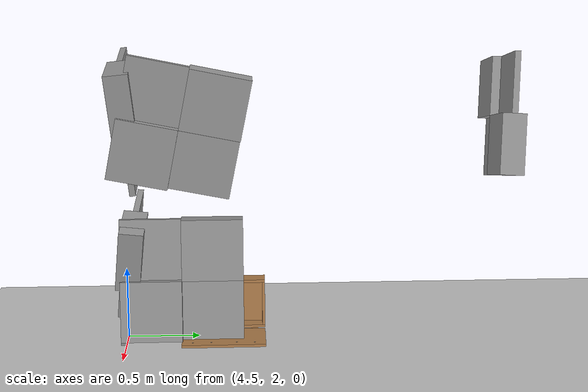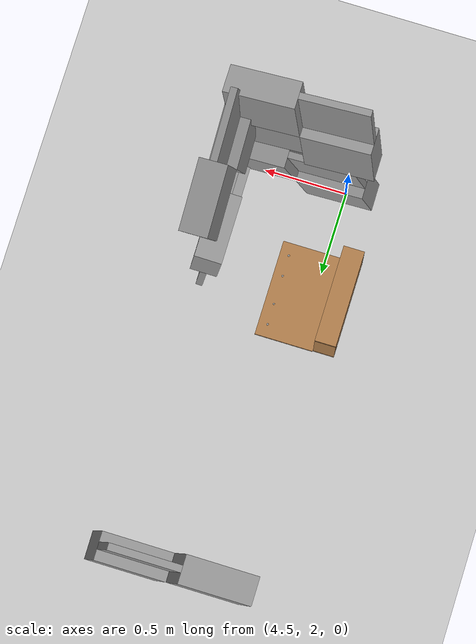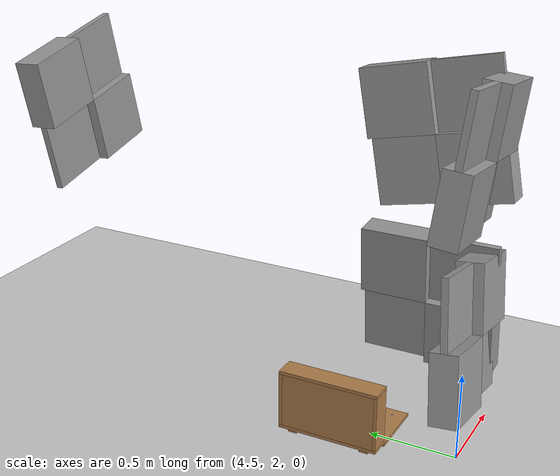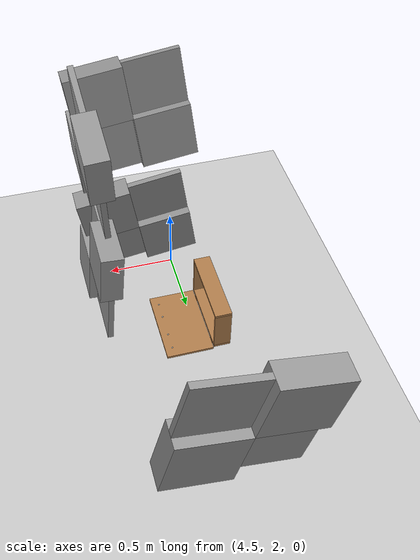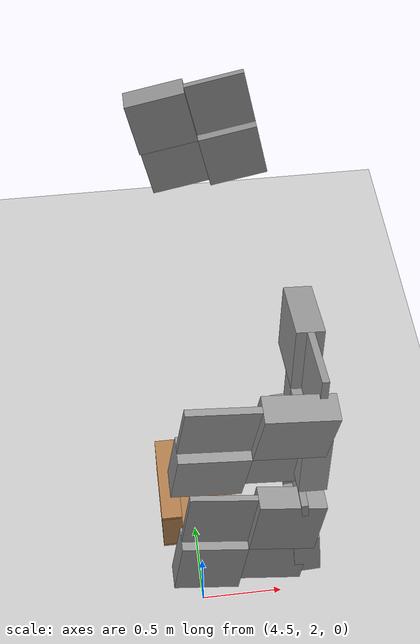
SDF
<sdf version="1.7">
 <world name="default">
  <model name="ground_plane">
   <static>1</static>
   <link name="link">
    <collision name="collision">
     <geometry><plane><normal>0 0 1</normal><size>100 100</size></plane></geometry>
     <surface>
      <contact><collide_bitmask>65535</collide_bitmask></contact>
      <friction><ode><mu>100</mu><mu2>50</mu2></ode></friction>
     </surface>
    </collision>
    <visual name="visual">
     <cast_shadows>0</cast_shadows>
     <geometry><plane><normal>0 0 1</normal><size>100 100</size></plane></geometry>
     <material>
      <script><uri>file://media/materials/scripts/gazebo.material</uri><name>Gazebo/Grey</name></script>
     </material>
    </visual>
   </link>
  </model>
  <model name="wall_slate_8">
   <static>1</static>
   <link name="link_0">
    <inertial><mass>1</mass></inertial>
    <gravity>0</gravity>
    <visual name="visual">
     <pose>0 0.2 0.2 0 -0 0</pose>
     <geometry><box><size>0.16 0.4 0.4</size></box></geometry>
     <material>
      <lighting>1</lighting>
      <script><uri>file://media/materials/scripts/gazebo.material</uri><name>Gazebo/Grey</name></script>
      <shader type="pixel"><normal_map>__default__</normal_map></shader>
      <ambient>0.3 0.3 0.3 1</ambient>
      <diffuse>0.7 0.7 0.7 1</diffuse>
      <specular>0.01 0.01 0.01 1</specular>
      <emissive>0 0 0 1</emissive>
     </material>
    </visual>
    <visual name="ModelPreview_0::link_0::visual_1">
     <pose>0 0.2 -0.2 0 -0 0</pose>
     <geometry><box><size>0.04 0.4 0.4</size></box></geometry>
     <material>
      <lighting>1</lighting>
      <script><uri>file://media/materials/scripts/gazebo.material</uri><name>Gazebo/Grey</name></script>
      <shader type="pixel"><normal_map>__default__</normal_map></shader>
      <ambient>0.3 0.3 0.3 1</ambient>
      <diffuse>0.7 0.7 0.7 1</diffuse>
      <specular>0.01 0.01 0.01 1</specular>
      <emissive>0 0 0 1</emissive>
     </material>
    </visual>
    <visual name="ModelPreview_0::link_0::visual_2">
     <pose>0 -0.2 0.2 0 -0 0</pose>
     <geometry><box><size>0.04 0.4 0.4</size></box></geometry>
     <material>
      <lighting>1</lighting>
      <script><uri>file://media/materials/scripts/gazebo.material</uri><name>Gazebo/Grey</name></script>
      <shader type="pixel"><normal_map>__default__</normal_map></shader>
      <ambient>0.3 0.3 0.3 1</ambient>
      <diffuse>0.7 0.7 0.7 1</diffuse>
      <specular>0.01 0.01 0.01 1</specular>
      <emissive>0 0 0 1</emissive>
     </material>
    </visual>
    <visual name="ModelPreview_0::link_0::visual_3">
     <pose>0 -0.2 -0.2 0 -0 0</pose>
     <geometry><box><size>0.16 0.4 0.4</size></box></geometry>
     <material>
      <lighting>1</lighting>
      <script><uri>file://media/materials/scripts/gazebo.material</uri><name>Gazebo/Grey</name></script>
      <shader type="pixel"><normal_map>__default__</normal_map></shader>
      <ambient>0.3 0.3 0.3 1</ambient>
      <diffuse>0.7 0.7 0.7 1</diffuse>
      <specular>0.01 0.01 0.01 1</specular>
      <emissive>0 0 0 1</emissive>
     </material>
    </visual>
    <collision name="collision_2">
     <pose>0 -0.2 0.2 0 -0 0</pose>
     <geometry><box><size>0.04 0.4 0.4</size></box></geometry>
     <surface>
      <friction>
       <ode><mu>1</mu><mu2>1</mu2><fdir1>0 0 0</fdir1><slip1>0</slip1><slip2>0</slip2></ode>
       <torsional>
        <coefficient>1</coefficient>
        <patch_radius>0</patch_radius>
        <surface_radius>0</surface_radius>
        <use_patch_radius>1</use_patch_radius>
        <ode><slip>0</slip></ode>
       </torsional>
      </friction>
      <bounce><restitution_coefficient>0</restitution_coefficient><threshold>1e+06</threshold></bounce>
      <contact>
       <collide_without_contact>0</collide_without_contact>
       <collide_without_contact_bitmask>1</collide_without_contact_bitmask>
       <collide_bitmask>1</collide_bitmask>
       <ode>
        <soft_cfm>0</soft_cfm>
        <soft_erp>0.2</soft_erp>
        <kp>1e+13</kp>
        <kd>1</kd>
        <max_vel>0.01</max_vel>
        <min_depth>0</min_depth>
       </ode>
       <bullet>
        <split_impulse>1</split_impulse>
        <split_impulse_penetration_threshold>-0.01</split_impulse_penetration_threshold>
        <soft_cfm>0</soft_cfm>
        <soft_erp>0.2</soft_erp>
        <kp>1e+13</kp>
        <kd>1</kd>
       </bullet>
      </contact>
     </surface>
    </collision>
    <collision name="collision_1">
     <pose>0 0.2 -0.2 0 -0 0</pose>
     <geometry><box><size>0.04 0.4 0.4</size></box></geometry>
     <surface>
      <friction>
       <ode><mu>1</mu><mu2>1</mu2><fdir1>0 0 0</fdir1><slip1>0</slip1><slip2>0</slip2></ode>
       <torsional>
        <coefficient>1</coefficient>
        <patch_radius>0</patch_radius>
        <surface_radius>0</surface_radius>
        <use_patch_radius>1</use_patch_radius>
        <ode><slip>0</slip></ode>
       </torsional>
      </friction>
      <bounce><restitution_coefficient>0</restitution_coefficient><threshold>1e+06</threshold></bounce>
      <contact>
       <collide_without_contact>0</collide_without_contact>
       <collide_without_contact_bitmask>1</collide_without_contact_bitmask>
       <collide_bitmask>1</collide_bitmask>
       <ode>
        <soft_cfm>0</soft_cfm>
        <soft_erp>0.2</soft_erp>
        <kp>1e+13</kp>
        <kd>1</kd>
        <max_vel>0.01</max_vel>
        <min_depth>0</min_depth>
       </ode>
       <bullet>
        <split_impulse>1</split_impulse>
        <split_impulse_penetration_threshold>-0.01</split_impulse_penetration_threshold>
        <soft_cfm>0</soft_cfm>
        <soft_erp>0.2</soft_erp>
        <kp>1e+13</kp>
        <kd>1</kd>
       </bullet>
      </contact>
     </surface>
    </collision>
    <collision name="collision_4">
     <pose>0 0.2 0.2 0 -0 0</pose>
     <geometry><box><size>0.16 0.4 0.4</size></box></geometry>
     <surface>
      <friction>
       <ode><mu>1</mu><mu2>1</mu2><fdir1>0 0 0</fdir1><slip1>0</slip1><slip2>0</slip2></ode>
       <torsional>
        <coefficient>1</coefficient>
        <patch_radius>0</patch_radius>
        <surface_radius>0</surface_radius>
        <use_patch_radius>1</use_patch_radius>
        <ode><slip>0</slip></ode>
       </torsional>
      </friction>
      <bounce><restitution_coefficient>0</restitution_coefficient><threshold>1e+06</threshold></bounce>
      <contact>
       <collide_without_contact>0</collide_without_contact>
       <collide_without_contact_bitmask>1</collide_without_contact_bitmask>
       <collide_bitmask>1</collide_bitmask>
       <ode>
        <soft_cfm>0</soft_cfm>
        <soft_erp>0.2</soft_erp>
        <kp>1e+13</kp>
        <kd>1</kd>
        <max_vel>0.01</max_vel>
        <min_depth>0</min_depth>
       </ode>
       <bullet>
        <split_impulse>1</split_impulse>
        <split_impulse_penetration_threshold>-0.01</split_impulse_penetration_threshold>
        <soft_cfm>0</soft_cfm>
        <soft_erp>0.2</soft_erp>
        <kp>1e+13</kp>
        <kd>1</kd>
       </bullet>
      </contact>
     </surface>
    </collision>
    <collision name="collision_3">
     <pose>0 -0.2 -0.2 0 -0 0</pose>
     <geometry><box><size>0.16 0.4 0.4</size></box></geometry>
     <surface>
      <friction>
       <ode><mu>1</mu><mu2>1</mu2><fdir1>0 0 0</fdir1><slip1>0</slip1><slip2>0</slip2></ode>
       <torsional>
        <coefficient>1</coefficient>
        <patch_radius>0</patch_radius>
        <surface_radius>0</surface_radius>
        <use_patch_radius>1</use_patch_radius>
        <ode><slip>0</slip></ode>
       </torsional>
      </friction>
      <bounce><restitution_coefficient>0</restitution_coefficient><threshold>1e+06</threshold></bounce>
      <contact>
       <collide_without_contact>0</collide_without_contact>
       <collide_without_contact_bitmask>1</collide_without_contact_bitmask>
       <collide_bitmask>1</collide_bitmask>
       <ode>
        <soft_cfm>0</soft_cfm>
        <soft_erp>0.2</soft_erp>
        <kp>1e+13</kp>
        <kd>1</kd>
        <max_vel>0.01</max_vel>
        <min_depth>0</min_depth>
       </ode>
       <bullet>
        <split_impulse>1</split_impulse>
        <split_impulse_penetration_threshold>-0.01</split_impulse_penetration_threshold>
        <soft_cfm>0</soft_cfm>
        <soft_erp>0.2</soft_erp>
        <kp>1e+13</kp>
        <kd>1</kd>
       </bullet>
      </contact>
     </surface>
    </collision>
   </link>
   <pose>4.77851 2.06618 0.6 -0.16 -0.1 -1.5659</pose>
  </model>
  <model name="wall_slate_38">
   <static>1</static>
   <link name="link_0">
    <inertial><mass>1</mass></inertial>
    <gravity>0</gravity>
    <visual name="visual">
     <pose>0 0.2 0.2 0 -0 0</pose>
     <geometry><box><size>0.16 0.4 0.4</size></box></geometry>
     <material>
      <lighting>1</lighting>
      <script><uri>file://media/materials/scripts/gazebo.material</uri><name>Gazebo/Grey</name></script>
      <shader type="pixel"><normal_map>__default__</normal_map></shader>
      <ambient>0.3 0.3 0.3 1</ambient>
      <diffuse>0.7 0.7 0.7 1</diffuse>
      <specular>0.01 0.01 0.01 1</specular>
      <emissive>0 0 0 1</emissive>
     </material>
    </visual>
    <visual name="ModelPreview_0::link_0::visual_1">
     <pose>0 0.2 -0.2 0 -0 0</pose>
     <geometry><box><size>0.04 0.4 0.4</size></box></geometry>
     <material>
      <lighting>1</lighting>
      <script><uri>file://media/materials/scripts/gazebo.material</uri><name>Gazebo/Grey</name></script>
      <shader type="pixel"><normal_map>__default__</normal_map></shader>
      <ambient>0.3 0.3 0.3 1</ambient>
      <diffuse>0.7 0.7 0.7 1</diffuse>
      <specular>0.01 0.01 0.01 1</specular>
      <emissive>0 0 0 1</emissive>
     </material>
    </visual>
    <visual name="ModelPreview_0::link_0::visual_2">
     <pose>0 -0.2 0.2 0 -0 0</pose>
     <geometry><box><size>0.04 0.4 0.4</size></box></geometry>
     <material>
      <lighting>1</lighting>
      <script><uri>file://media/materials/scripts/gazebo.material</uri><name>Gazebo/Grey</name></script>
      <shader type="pixel"><normal_map>__default__</normal_map></shader>
      <ambient>0.3 0.3 0.3 1</ambient>
      <diffuse>0.7 0.7 0.7 1</diffuse>
      <specular>0.01 0.01 0.01 1</specular>
      <emissive>0 0 0 1</emissive>
     </material>
    </visual>
    <visual name="ModelPreview_0::link_0::visual_3">
     <pose>0 -0.2 -0.2 0 -0 0</pose>
     <geometry><box><size>0.16 0.4 0.4</size></box></geometry>
     <material>
      <lighting>1</lighting>
      <script><uri>file://media/materials/scripts/gazebo.material</uri><name>Gazebo/Grey</name></script>
      <shader type="pixel"><normal_map>__default__</normal_map></shader>
      <ambient>0.3 0.3 0.3 1</ambient>
      <diffuse>0.7 0.7 0.7 1</diffuse>
      <specular>0.01 0.01 0.01 1</specular>
      <emissive>0 0 0 1</emissive>
     </material>
    </visual>
    <collision name="collision_2">
     <pose>0 -0.2 0.2 0 -0 0</pose>
     <geometry><box><size>0.04 0.4 0.4</size></box></geometry>
     <surface>
      <friction>
       <ode><mu>1</mu><mu2>1</mu2><fdir1>0 0 0</fdir1><slip1>0</slip1><slip2>0</slip2></ode>
       <torsional>
        <coefficient>1</coefficient>
        <patch_radius>0</patch_radius>
        <surface_radius>0</surface_radius>
        <use_patch_radius>1</use_patch_radius>
        <ode><slip>0</slip></ode>
       </torsional>
      </friction>
      <bounce><restitution_coefficient>0</restitution_coefficient><threshold>1e+06</threshold></bounce>
      <contact>
       <collide_without_contact>0</collide_without_contact>
       <collide_without_contact_bitmask>1</collide_without_contact_bitmask>
       <collide_bitmask>1</collide_bitmask>
       <ode>
        <soft_cfm>0</soft_cfm>
        <soft_erp>0.2</soft_erp>
        <kp>1e+13</kp>
        <kd>1</kd>
        <max_vel>0.01</max_vel>
        <min_depth>0</min_depth>
       </ode>
       <bullet>
        <split_impulse>1</split_impulse>
        <split_impulse_penetration_threshold>-0.01</split_impulse_penetration_threshold>
        <soft_cfm>0</soft_cfm>
        <soft_erp>0.2</soft_erp>
        <kp>1e+13</kp>
        <kd>1</kd>
       </bullet>
      </contact>
     </surface>
    </collision>
    <collision name="collision_1">
     <pose>0 0.2 -0.2 0 -0 0</pose>
     <geometry><box><size>0.04 0.4 0.4</size></box></geometry>
     <surface>
      <friction>
       <ode><mu>1</mu><mu2>1</mu2><fdir1>0 0 0</fdir1><slip1>0</slip1><slip2>0</slip2></ode>
       <torsional>
        <coefficient>1</coefficient>
        <patch_radius>0</patch_radius>
        <surface_radius>0</surface_radius>
        <use_patch_radius>1</use_patch_radius>
        <ode><slip>0</slip></ode>
       </torsional>
      </friction>
      <bounce><restitution_coefficient>0</restitution_coefficient><threshold>1e+06</threshold></bounce>
      <contact>
       <collide_without_contact>0</collide_without_contact>
       <collide_without_contact_bitmask>1</collide_without_contact_bitmask>
       <collide_bitmask>1</collide_bitmask>
       <ode>
        <soft_cfm>0</soft_cfm>
        <soft_erp>0.2</soft_erp>
        <kp>1e+13</kp>
        <kd>1</kd>
        <max_vel>0.01</max_vel>
        <min_depth>0</min_depth>
       </ode>
       <bullet>
        <split_impulse>1</split_impulse>
        <split_impulse_penetration_threshold>-0.01</split_impulse_penetration_threshold>
        <soft_cfm>0</soft_cfm>
        <soft_erp>0.2</soft_erp>
        <kp>1e+13</kp>
        <kd>1</kd>
       </bullet>
      </contact>
     </surface>
    </collision>
    <collision name="collision_4">
     <pose>0 0.2 0.2 0 -0 0</pose>
     <geometry><box><size>0.16 0.4 0.4</size></box></geometry>
     <surface>
      <friction>
       <ode><mu>1</mu><mu2>1</mu2><fdir1>0 0 0</fdir1><slip1>0</slip1><slip2>0</slip2></ode>
       <torsional>
        <coefficient>1</coefficient>
        <patch_radius>0</patch_radius>
        <surface_radius>0</surface_radius>
        <use_patch_radius>1</use_patch_radius>
        <ode><slip>0</slip></ode>
       </torsional>
      </friction>
      <bounce><restitution_coefficient>0</restitution_coefficient><threshold>1e+06</threshold></bounce>
      <contact>
       <collide_without_contact>0</collide_without_contact>
       <collide_without_contact_bitmask>1</collide_without_contact_bitmask>
       <collide_bitmask>1</collide_bitmask>
       <ode>
        <soft_cfm>0</soft_cfm>
        <soft_erp>0.2</soft_erp>
        <kp>1e+13</kp>
        <kd>1</kd>
        <max_vel>0.01</max_vel>
        <min_depth>0</min_depth>
       </ode>
       <bullet>
        <split_impulse>1</split_impulse>
        <split_impulse_penetration_threshold>-0.01</split_impulse_penetration_threshold>
        <soft_cfm>0</soft_cfm>
        <soft_erp>0.2</soft_erp>
        <kp>1e+13</kp>
        <kd>1</kd>
       </bullet>
      </contact>
     </surface>
    </collision>
    <collision name="collision_3">
     <pose>0 -0.2 -0.2 0 -0 0</pose>
     <geometry><box><size>0.16 0.4 0.4</size></box></geometry>
     <surface>
      <friction>
       <ode><mu>1</mu><mu2>1</mu2><fdir1>0 0 0</fdir1><slip1>0</slip1><slip2>0</slip2></ode>
       <torsional>
        <coefficient>1</coefficient>
        <patch_radius>0</patch_radius>
        <surface_radius>0</surface_radius>
        <use_patch_radius>1</use_patch_radius>
        <ode><slip>0</slip></ode>
       </torsional>
      </friction>
      <bounce><restitution_coefficient>0</restitution_coefficient><threshold>1e+06</threshold></bounce>
      <contact>
       <collide_without_contact>0</collide_without_contact>
       <collide_without_contact_bitmask>1</collide_without_contact_bitmask>
       <collide_bitmask>1</collide_bitmask>
       <ode>
        <soft_cfm>0</soft_cfm>
        <soft_erp>0.2</soft_erp>
        <kp>1e+13</kp>
        <kd>1</kd>
        <max_vel>0.01</max_vel>
        <min_depth>0</min_depth>
       </ode>
       <bullet>
        <split_impulse>1</split_impulse>
        <split_impulse_penetration_threshold>-0.01</split_impulse_penetration_threshold>
        <soft_cfm>0</soft_cfm>
        <soft_erp>0.2</soft_erp>
        <kp>1e+13</kp>
        <kd>1</kd>
       </bullet>
      </contact>
     </surface>
    </collision>
   </link>
   <pose>4.75351 4.56618 1.6 -0.2 0.06 1.5757</pose>
  </model>
  <model name="wall_slate_48">
   <static>1</static>
   <link name="link_0">
    <inertial><mass>1</mass></inertial>
    <gravity>0</gravity>
    <visual name="visual">
     <pose>0 0.2 0.2 0 -0 0</pose>
     <geometry><box><size>0.16 0.4 0.4</size></box></geometry>
     <material>
      <lighting>1</lighting>
      <script><uri>file://media/materials/scripts/gazebo.material</uri><name>Gazebo/Grey</name></script>
      <shader type="pixel"><normal_map>__default__</normal_map></shader>
      <ambient>0.3 0.3 0.3 1</ambient>
      <diffuse>0.7 0.7 0.7 1</diffuse>
      <specular>0.01 0.01 0.01 1</specular>
      <emissive>0 0 0 1</emissive>
     </material>
    </visual>
    <visual name="ModelPreview_0::link_0::visual_1">
     <pose>0 0.2 -0.2 0 -0 0</pose>
     <geometry><box><size>0.04 0.4 0.4</size></box></geometry>
     <material>
      <lighting>1</lighting>
      <script><uri>file://media/materials/scripts/gazebo.material</uri><name>Gazebo/Grey</name></script>
      <shader type="pixel"><normal_map>__default__</normal_map></shader>
      <ambient>0.3 0.3 0.3 1</ambient>
      <diffuse>0.7 0.7 0.7 1</diffuse>
      <specular>0.01 0.01 0.01 1</specular>
      <emissive>0 0 0 1</emissive>
     </material>
    </visual>
    <visual name="ModelPreview_0::link_0::visual_2">
     <pose>0 -0.2 0.2 0 -0 0</pose>
     <geometry><box><size>0.04 0.4 0.4</size></box></geometry>
     <material>
      <lighting>1</lighting>
      <script><uri>file://media/materials/scripts/gazebo.material</uri><name>Gazebo/Grey</name></script>
      <shader type="pixel"><normal_map>__default__</normal_map></shader>
      <ambient>0.3 0.3 0.3 1</ambient>
      <diffuse>0.7 0.7 0.7 1</diffuse>
      <specular>0.01 0.01 0.01 1</specular>
      <emissive>0 0 0 1</emissive>
     </material>
    </visual>
    <visual name="ModelPreview_0::link_0::visual_3">
     <pose>0 -0.2 -0.2 0 -0 0</pose>
     <geometry><box><size>0.16 0.4 0.4</size></box></geometry>
     <material>
      <lighting>1</lighting>
      <script><uri>file://media/materials/scripts/gazebo.material</uri><name>Gazebo/Grey</name></script>
      <shader type="pixel"><normal_map>__default__</normal_map></shader>
      <ambient>0.3 0.3 0.3 1</ambient>
      <diffuse>0.7 0.7 0.7 1</diffuse>
      <specular>0.01 0.01 0.01 1</specular>
      <emissive>0 0 0 1</emissive>
     </material>
    </visual>
    <collision name="collision_2">
     <pose>0 -0.2 0.2 0 -0 0</pose>
     <geometry><box><size>0.04 0.4 0.4</size></box></geometry>
     <surface>
      <friction>
       <ode><mu>1</mu><mu2>1</mu2><fdir1>0 0 0</fdir1><slip1>0</slip1><slip2>0</slip2></ode>
       <torsional>
        <coefficient>1</coefficient>
        <patch_radius>0</patch_radius>
        <surface_radius>0</surface_radius>
        <use_patch_radius>1</use_patch_radius>
        <ode><slip>0</slip></ode>
       </torsional>
      </friction>
      <bounce><restitution_coefficient>0</restitution_coefficient><threshold>1e+06</threshold></bounce>
      <contact>
       <collide_without_contact>0</collide_without_contact>
       <collide_without_contact_bitmask>1</collide_without_contact_bitmask>
       <collide_bitmask>1</collide_bitmask>
       <ode>
        <soft_cfm>0</soft_cfm>
        <soft_erp>0.2</soft_erp>
        <kp>1e+13</kp>
        <kd>1</kd>
        <max_vel>0.01</max_vel>
        <min_depth>0</min_depth>
       </ode>
       <bullet>
        <split_impulse>1</split_impulse>
        <split_impulse_penetration_threshold>-0.01</split_impulse_penetration_threshold>
        <soft_cfm>0</soft_cfm>
        <soft_erp>0.2</soft_erp>
        <kp>1e+13</kp>
        <kd>1</kd>
       </bullet>
      </contact>
     </surface>
    </collision>
    <collision name="collision_1">
     <pose>0 0.2 -0.2 0 -0 0</pose>
     <geometry><box><size>0.04 0.4 0.4</size></box></geometry>
     <surface>
      <friction>
       <ode><mu>1</mu><mu2>1</mu2><fdir1>0 0 0</fdir1><slip1>0</slip1><slip2>0</slip2></ode>
       <torsional>
        <coefficient>1</coefficient>
        <patch_radius>0</patch_radius>
        <surface_radius>0</surface_radius>
        <use_patch_radius>1</use_patch_radius>
        <ode><slip>0</slip></ode>
       </torsional>
      </friction>
      <bounce><restitution_coefficient>0</restitution_coefficient><threshold>1e+06</threshold></bounce>
      <contact>
       <collide_without_contact>0</collide_without_contact>
       <collide_without_contact_bitmask>1</collide_without_contact_bitmask>
       <collide_bitmask>1</collide_bitmask>
       <ode>
        <soft_cfm>0</soft_cfm>
        <soft_erp>0.2</soft_erp>
        <kp>1e+13</kp>
        <kd>1</kd>
        <max_vel>0.01</max_vel>
        <min_depth>0</min_depth>
       </ode>
       <bullet>
        <split_impulse>1</split_impulse>
        <split_impulse_penetration_threshold>-0.01</split_impulse_penetration_threshold>
        <soft_cfm>0</soft_cfm>
        <soft_erp>0.2</soft_erp>
        <kp>1e+13</kp>
        <kd>1</kd>
       </bullet>
      </contact>
     </surface>
    </collision>
    <collision name="collision_4">
     <pose>0 0.2 0.2 0 -0 0</pose>
     <geometry><box><size>0.16 0.4 0.4</size></box></geometry>
     <surface>
      <friction>
       <ode><mu>1</mu><mu2>1</mu2><fdir1>0 0 0</fdir1><slip1>0</slip1><slip2>0</slip2></ode>
       <torsional>
        <coefficient>1</coefficient>
        <patch_radius>0</patch_radius>
        <surface_radius>0</surface_radius>
        <use_patch_radius>1</use_patch_radius>
        <ode><slip>0</slip></ode>
       </torsional>
      </friction>
      <bounce><restitution_coefficient>0</restitution_coefficient><threshold>1e+06</threshold></bounce>
      <contact>
       <collide_without_contact>0</collide_without_contact>
       <collide_without_contact_bitmask>1</collide_without_contact_bitmask>
       <collide_bitmask>1</collide_bitmask>
       <ode>
        <soft_cfm>0</soft_cfm>
        <soft_erp>0.2</soft_erp>
        <kp>1e+13</kp>
        <kd>1</kd>
        <max_vel>0.01</max_vel>
        <min_depth>0</min_depth>
       </ode>
       <bullet>
        <split_impulse>1</split_impulse>
        <split_impulse_penetration_threshold>-0.01</split_impulse_penetration_threshold>
        <soft_cfm>0</soft_cfm>
        <soft_erp>0.2</soft_erp>
        <kp>1e+13</kp>
        <kd>1</kd>
       </bullet>
      </contact>
     </surface>
    </collision>
    <collision name="collision_3">
     <pose>0 -0.2 -0.2 0 -0 0</pose>
     <geometry><box><size>0.16 0.4 0.4</size></box></geometry>
     <surface>
      <friction>
       <ode><mu>1</mu><mu2>1</mu2><fdir1>0 0 0</fdir1><slip1>0</slip1><slip2>0</slip2></ode>
       <torsional>
        <coefficient>1</coefficient>
        <patch_radius>0</patch_radius>
        <surface_radius>0</surface_radius>
        <use_patch_radius>1</use_patch_radius>
        <ode><slip>0</slip></ode>
       </torsional>
      </friction>
      <bounce><restitution_coefficient>0</restitution_coefficient><threshold>1e+06</threshold></bounce>
      <contact>
       <collide_without_contact>0</collide_without_contact>
       <collide_without_contact_bitmask>1</collide_without_contact_bitmask>
       <collide_bitmask>1</collide_bitmask>
       <ode>
        <soft_cfm>0</soft_cfm>
        <soft_erp>0.2</soft_erp>
        <kp>1e+13</kp>
        <kd>1</kd>
        <max_vel>0.01</max_vel>
        <min_depth>0</min_depth>
       </ode>
       <bullet>
        <split_impulse>1</split_impulse>
        <split_impulse_penetration_threshold>-0.01</split_impulse_penetration_threshold>
        <soft_cfm>0</soft_cfm>
        <soft_erp>0.2</soft_erp>
        <kp>1e+13</kp>
        <kd>1</kd>
       </bullet>
      </contact>
     </surface>
    </collision>
   </link>
   <pose>5.12851 2.41618 1.6 -0.2 0.06 0.0049</pose>
  </model>
  <model name="wall_slate_87">
   <static>1</static>
   <link name="link_0">
    <inertial><mass>1</mass></inertial>
    <gravity>0</gravity>
    <visual name="visual">
     <pose>0 0.2 0.2 0 -0 0</pose>
     <geometry><box><size>0.16 0.4 0.4</size></box></geometry>
     <material>
      <lighting>1</lighting>
      <script><uri>file://media/materials/scripts/gazebo.material</uri><name>Gazebo/Grey</name></script>
      <shader type="pixel"><normal_map>__default__</normal_map></shader>
      <ambient>0.3 0.3 0.3 1</ambient>
      <diffuse>0.7 0.7 0.7 1</diffuse>
      <specular>0.01 0.01 0.01 1</specular>
      <emissive>0 0 0 1</emissive>
     </material>
    </visual>
    <visual name="ModelPreview_0::link_0::visual_1">
     <pose>0 0.2 -0.2 0 -0 0</pose>
     <geometry><box><size>0.04 0.4 0.4</size></box></geometry>
     <material>
      <lighting>1</lighting>
      <script><uri>file://media/materials/scripts/gazebo.material</uri><name>Gazebo/Grey</name></script>
      <shader type="pixel"><normal_map>__default__</normal_map></shader>
      <ambient>0.3 0.3 0.3 1</ambient>
      <diffuse>0.7 0.7 0.7 1</diffuse>
      <specular>0.01 0.01 0.01 1</specular>
      <emissive>0 0 0 1</emissive>
     </material>
    </visual>
    <visual name="ModelPreview_0::link_0::visual_2">
     <pose>0 -0.2 0.2 0 -0 0</pose>
     <geometry><box><size>0.04 0.4 0.4</size></box></geometry>
     <material>
      <lighting>1</lighting>
      <script><uri>file://media/materials/scripts/gazebo.material</uri><name>Gazebo/Grey</name></script>
      <shader type="pixel"><normal_map>__default__</normal_map></shader>
      <ambient>0.3 0.3 0.3 1</ambient>
      <diffuse>0.7 0.7 0.7 1</diffuse>
      <specular>0.01 0.01 0.01 1</specular>
      <emissive>0 0 0 1</emissive>
     </material>
    </visual>
    <visual name="ModelPreview_0::link_0::visual_3">
     <pose>0 -0.2 -0.2 0 -0 0</pose>
     <geometry><box><size>0.16 0.4 0.4</size></box></geometry>
     <material>
      <lighting>1</lighting>
      <script><uri>file://media/materials/scripts/gazebo.material</uri><name>Gazebo/Grey</name></script>
      <shader type="pixel"><normal_map>__default__</normal_map></shader>
      <ambient>0.3 0.3 0.3 1</ambient>
      <diffuse>0.7 0.7 0.7 1</diffuse>
      <specular>0.01 0.01 0.01 1</specular>
      <emissive>0 0 0 1</emissive>
     </material>
    </visual>
    <collision name="collision_2">
     <pose>0 -0.2 0.2 0 -0 0</pose>
     <geometry><box><size>0.04 0.4 0.4</size></box></geometry>
     <surface>
      <friction>
       <ode><mu>1</mu><mu2>1</mu2><fdir1>0 0 0</fdir1><slip1>0</slip1><slip2>0</slip2></ode>
       <torsional>
        <coefficient>1</coefficient>
        <patch_radius>0</patch_radius>
        <surface_radius>0</surface_radius>
        <use_patch_radius>1</use_patch_radius>
        <ode><slip>0</slip></ode>
       </torsional>
      </friction>
      <bounce><restitution_coefficient>0</restitution_coefficient><threshold>1e+06</threshold></bounce>
      <contact>
       <collide_without_contact>0</collide_without_contact>
       <collide_without_contact_bitmask>1</collide_without_contact_bitmask>
       <collide_bitmask>1</collide_bitmask>
       <ode>
        <soft_cfm>0</soft_cfm>
        <soft_erp>0.2</soft_erp>
        <kp>1e+13</kp>
        <kd>1</kd>
        <max_vel>0.01</max_vel>
        <min_depth>0</min_depth>
       </ode>
       <bullet>
        <split_impulse>1</split_impulse>
        <split_impulse_penetration_threshold>-0.01</split_impulse_penetration_threshold>
        <soft_cfm>0</soft_cfm>
        <soft_erp>0.2</soft_erp>
        <kp>1e+13</kp>
        <kd>1</kd>
       </bullet>
      </contact>
     </surface>
    </collision>
    <collision name="collision_1">
     <pose>0 0.2 -0.2 0 -0 0</pose>
     <geometry><box><size>0.04 0.4 0.4</size></box></geometry>
     <surface>
      <friction>
       <ode><mu>1</mu><mu2>1</mu2><fdir1>0 0 0</fdir1><slip1>0</slip1><slip2>0</slip2></ode>
       <torsional>
        <coefficient>1</coefficient>
        <patch_radius>0</patch_radius>
        <surface_radius>0</surface_radius>
        <use_patch_radius>1</use_patch_radius>
        <ode><slip>0</slip></ode>
       </torsional>
      </friction>
      <bounce><restitution_coefficient>0</restitution_coefficient><threshold>1e+06</threshold></bounce>
      <contact>
       <collide_without_contact>0</collide_without_contact>
       <collide_without_contact_bitmask>1</collide_without_contact_bitmask>
       <collide_bitmask>1</collide_bitmask>
       <ode>
        <soft_cfm>0</soft_cfm>
        <soft_erp>0.2</soft_erp>
        <kp>1e+13</kp>
        <kd>1</kd>
        <max_vel>0.01</max_vel>
        <min_depth>0</min_depth>
       </ode>
       <bullet>
        <split_impulse>1</split_impulse>
        <split_impulse_penetration_threshold>-0.01</split_impulse_penetration_threshold>
        <soft_cfm>0</soft_cfm>
        <soft_erp>0.2</soft_erp>
        <kp>1e+13</kp>
        <kd>1</kd>
       </bullet>
      </contact>
     </surface>
    </collision>
    <collision name="collision_4">
     <pose>0 0.2 0.2 0 -0 0</pose>
     <geometry><box><size>0.16 0.4 0.4</size></box></geometry>
     <surface>
      <friction>
       <ode><mu>1</mu><mu2>1</mu2><fdir1>0 0 0</fdir1><slip1>0</slip1><slip2>0</slip2></ode>
       <torsional>
        <coefficient>1</coefficient>
        <patch_radius>0</patch_radius>
        <surface_radius>0</surface_radius>
        <use_patch_radius>1</use_patch_radius>
        <ode><slip>0</slip></ode>
       </torsional>
      </friction>
      <bounce><restitution_coefficient>0</restitution_coefficient><threshold>1e+06</threshold></bounce>
      <contact>
       <collide_without_contact>0</collide_without_contact>
       <collide_without_contact_bitmask>1</collide_without_contact_bitmask>
       <collide_bitmask>1</collide_bitmask>
       <ode>
        <soft_cfm>0</soft_cfm>
        <soft_erp>0.2</soft_erp>
        <kp>1e+13</kp>
        <kd>1</kd>
        <max_vel>0.01</max_vel>
        <min_depth>0</min_depth>
       </ode>
       <bullet>
        <split_impulse>1</split_impulse>
        <split_impulse_penetration_threshold>-0.01</split_impulse_penetration_threshold>
        <soft_cfm>0</soft_cfm>
        <soft_erp>0.2</soft_erp>
        <kp>1e+13</kp>
        <kd>1</kd>
       </bullet>
      </contact>
     </surface>
    </collision>
    <collision name="collision_3">
     <pose>0 -0.2 -0.2 0 -0 0</pose>
     <geometry><box><size>0.16 0.4 0.4</size></box></geometry>
     <surface>
      <friction>
       <ode><mu>1</mu><mu2>1</mu2><fdir1>0 0 0</fdir1><slip1>0</slip1><slip2>0</slip2></ode>
       <torsional>
        <coefficient>1</coefficient>
        <patch_radius>0</patch_radius>
        <surface_radius>0</surface_radius>
        <use_patch_radius>1</use_patch_radius>
        <ode><slip>0</slip></ode>
       </torsional>
      </friction>
      <bounce><restitution_coefficient>0</restitution_coefficient><threshold>1e+06</threshold></bounce>
      <contact>
       <collide_without_contact>0</collide_without_contact>
       <collide_without_contact_bitmask>1</collide_without_contact_bitmask>
       <collide_bitmask>1</collide_bitmask>
       <ode>
        <soft_cfm>0</soft_cfm>
        <soft_erp>0.2</soft_erp>
        <kp>1e+13</kp>
        <kd>1</kd>
        <max_vel>0.01</max_vel>
        <min_depth>0</min_depth>
       </ode>
       <bullet>
        <split_impulse>1</split_impulse>
        <split_impulse_penetration_threshold>-0.01</split_impulse_penetration_threshold>
        <soft_cfm>0</soft_cfm>
        <soft_erp>0.2</soft_erp>
        <kp>1e+13</kp>
        <kd>1</kd>
       </bullet>
      </contact>
     </surface>
    </collision>
   </link>
   <pose>5.12851 2.41618 0.6 -0 -0.08 0.0049</pose>
  </model>
  <model name="wall_slate_106">
   <static>1</static>
   <link name="link_0">
    <inertial><mass>1</mass></inertial>
    <gravity>0</gravity>
    <visual name="visual">
     <pose>0 0.2 0.2 0 -0 0</pose>
     <geometry><box><size>0.16 0.4 0.4</size></box></geometry>
     <material>
      <lighting>1</lighting>
      <script><uri>file://media/materials/scripts/gazebo.material</uri><name>Gazebo/Grey</name></script>
      <shader type="pixel"><normal_map>__default__</normal_map></shader>
      <ambient>0.3 0.3 0.3 1</ambient>
      <diffuse>0.7 0.7 0.7 1</diffuse>
      <specular>0.01 0.01 0.01 1</specular>
      <emissive>0 0 0 1</emissive>
     </material>
    </visual>
    <visual name="ModelPreview_0::link_0::visual_1">
     <pose>0 0.2 -0.2 0 -0 0</pose>
     <geometry><box><size>0.04 0.4 0.4</size></box></geometry>
     <material>
      <lighting>1</lighting>
      <script><uri>file://media/materials/scripts/gazebo.material</uri><name>Gazebo/Grey</name></script>
      <shader type="pixel"><normal_map>__default__</normal_map></shader>
      <ambient>0.3 0.3 0.3 1</ambient>
      <diffuse>0.7 0.7 0.7 1</diffuse>
      <specular>0.01 0.01 0.01 1</specular>
      <emissive>0 0 0 1</emissive>
     </material>
    </visual>
    <visual name="ModelPreview_0::link_0::visual_2">
     <pose>0 -0.2 0.2 0 -0 0</pose>
     <geometry><box><size>0.04 0.4 0.4</size></box></geometry>
     <material>
      <lighting>1</lighting>
      <script><uri>file://media/materials/scripts/gazebo.material</uri><name>Gazebo/Grey</name></script>
      <shader type="pixel"><normal_map>__default__</normal_map></shader>
      <ambient>0.3 0.3 0.3 1</ambient>
      <diffuse>0.7 0.7 0.7 1</diffuse>
      <specular>0.01 0.01 0.01 1</specular>
      <emissive>0 0 0 1</emissive>
     </material>
    </visual>
    <visual name="ModelPreview_0::link_0::visual_3">
     <pose>0 -0.2 -0.2 0 -0 0</pose>
     <geometry><box><size>0.16 0.4 0.4</size></box></geometry>
     <material>
      <lighting>1</lighting>
      <script><uri>file://media/materials/scripts/gazebo.material</uri><name>Gazebo/Grey</name></script>
      <shader type="pixel"><normal_map>__default__</normal_map></shader>
      <ambient>0.3 0.3 0.3 1</ambient>
      <diffuse>0.7 0.7 0.7 1</diffuse>
      <specular>0.01 0.01 0.01 1</specular>
      <emissive>0 0 0 1</emissive>
     </material>
    </visual>
    <collision name="collision_2">
     <pose>0 -0.2 0.2 0 -0 0</pose>
     <geometry><box><size>0.04 0.4 0.4</size></box></geometry>
     <surface>
      <friction>
       <ode><mu>1</mu><mu2>1</mu2><fdir1>0 0 0</fdir1><slip1>0</slip1><slip2>0</slip2></ode>
       <torsional>
        <coefficient>1</coefficient>
        <patch_radius>0</patch_radius>
        <surface_radius>0</surface_radius>
        <use_patch_radius>1</use_patch_radius>
        <ode><slip>0</slip></ode>
       </torsional>
      </friction>
      <bounce><restitution_coefficient>0</restitution_coefficient><threshold>1e+06</threshold></bounce>
      <contact>
       <collide_without_contact>0</collide_without_contact>
       <collide_without_contact_bitmask>1</collide_without_contact_bitmask>
       <collide_bitmask>1</collide_bitmask>
       <ode>
        <soft_cfm>0</soft_cfm>
        <soft_erp>0.2</soft_erp>
        <kp>1e+13</kp>
        <kd>1</kd>
        <max_vel>0.01</max_vel>
        <min_depth>0</min_depth>
       </ode>
       <bullet>
        <split_impulse>1</split_impulse>
        <split_impulse_penetration_threshold>-0.01</split_impulse_penetration_threshold>
        <soft_cfm>0</soft_cfm>
        <soft_erp>0.2</soft_erp>
        <kp>1e+13</kp>
        <kd>1</kd>
       </bullet>
      </contact>
     </surface>
    </collision>
    <collision name="collision_1">
     <pose>0 0.2 -0.2 0 -0 0</pose>
     <geometry><box><size>0.04 0.4 0.4</size></box></geometry>
     <surface>
      <friction>
       <ode><mu>1</mu><mu2>1</mu2><fdir1>0 0 0</fdir1><slip1>0</slip1><slip2>0</slip2></ode>
       <torsional>
        <coefficient>1</coefficient>
        <patch_radius>0</patch_radius>
        <surface_radius>0</surface_radius>
        <use_patch_radius>1</use_patch_radius>
        <ode><slip>0</slip></ode>
       </torsional>
      </friction>
      <bounce><restitution_coefficient>0</restitution_coefficient><threshold>1e+06</threshold></bounce>
      <contact>
       <collide_without_contact>0</collide_without_contact>
       <collide_without_contact_bitmask>1</collide_without_contact_bitmask>
       <collide_bitmask>1</collide_bitmask>
       <ode>
        <soft_cfm>0</soft_cfm>
        <soft_erp>0.2</soft_erp>
        <kp>1e+13</kp>
        <kd>1</kd>
        <max_vel>0.01</max_vel>
        <min_depth>0</min_depth>
       </ode>
       <bullet>
        <split_impulse>1</split_impulse>
        <split_impulse_penetration_threshold>-0.01</split_impulse_penetration_threshold>
        <soft_cfm>0</soft_cfm>
        <soft_erp>0.2</soft_erp>
        <kp>1e+13</kp>
        <kd>1</kd>
       </bullet>
      </contact>
     </surface>
    </collision>
    <collision name="collision_4">
     <pose>0 0.2 0.2 0 -0 0</pose>
     <geometry><box><size>0.16 0.4 0.4</size></box></geometry>
     <surface>
      <friction>
       <ode><mu>1</mu><mu2>1</mu2><fdir1>0 0 0</fdir1><slip1>0</slip1><slip2>0</slip2></ode>
       <torsional>
        <coefficient>1</coefficient>
        <patch_radius>0</patch_radius>
        <surface_radius>0</surface_radius>
        <use_patch_radius>1</use_patch_radius>
        <ode><slip>0</slip></ode>
       </torsional>
      </friction>
      <bounce><restitution_coefficient>0</restitution_coefficient><threshold>1e+06</threshold></bounce>
      <contact>
       <collide_without_contact>0</collide_without_contact>
       <collide_without_contact_bitmask>1</collide_without_contact_bitmask>
       <collide_bitmask>1</collide_bitmask>
       <ode>
        <soft_cfm>0</soft_cfm>
        <soft_erp>0.2</soft_erp>
        <kp>1e+13</kp>
        <kd>1</kd>
        <max_vel>0.01</max_vel>
        <min_depth>0</min_depth>
       </ode>
       <bullet>
        <split_impulse>1</split_impulse>
        <split_impulse_penetration_threshold>-0.01</split_impulse_penetration_threshold>
        <soft_cfm>0</soft_cfm>
        <soft_erp>0.2</soft_erp>
        <kp>1e+13</kp>
        <kd>1</kd>
       </bullet>
      </contact>
     </surface>
    </collision>
    <collision name="collision_3">
     <pose>0 -0.2 -0.2 0 -0 0</pose>
     <geometry><box><size>0.16 0.4 0.4</size></box></geometry>
     <surface>
      <friction>
       <ode><mu>1</mu><mu2>1</mu2><fdir1>0 0 0</fdir1><slip1>0</slip1><slip2>0</slip2></ode>
       <torsional>
        <coefficient>1</coefficient>
        <patch_radius>0</patch_radius>
        <surface_radius>0</surface_radius>
        <use_patch_radius>1</use_patch_radius>
        <ode><slip>0</slip></ode>
       </torsional>
      </friction>
      <bounce><restitution_coefficient>0</restitution_coefficient><threshold>1e+06</threshold></bounce>
      <contact>
       <collide_without_contact>0</collide_without_contact>
       <collide_without_contact_bitmask>1</collide_without_contact_bitmask>
       <collide_bitmask>1</collide_bitmask>
       <ode>
        <soft_cfm>0</soft_cfm>
        <soft_erp>0.2</soft_erp>
        <kp>1e+13</kp>
        <kd>1</kd>
        <max_vel>0.01</max_vel>
        <min_depth>0</min_depth>
       </ode>
       <bullet>
        <split_impulse>1</split_impulse>
        <split_impulse_penetration_threshold>-0.01</split_impulse_penetration_threshold>
        <soft_cfm>0</soft_cfm>
        <soft_erp>0.2</soft_erp>
        <kp>1e+13</kp>
        <kd>1</kd>
       </bullet>
      </contact>
     </surface>
    </collision>
   </link>
   <pose>4.77851 2.06618 1.6 -0.12 0.1 -1.5659</pose>
  </model>
  <model name="wooden_case">
   <link name="base">
    <pose>0 0 0.024 0 -0 0</pose>
    <inertial>
     <pose>-0.022184 0 0.171592 0 -0 0</pose>
     <mass>3.96264</mass>
     <inertia>
      <ixx>0.213536</ixx>
      <ixy>0</ixy>
      <ixz>0.000779377</ixz>
      <iyy>0.0708943</iyy>
      <iyz>0</iyz>
      <izz>0.154604</izz>
     </inertia>
    </inertial>
    <collision name="collision_back">
     <pose>-0.053975 0 0.1778 0 -0 0</pose>
     <geometry><box><size>0.01905 0.5461 0.3175</size></box></geometry>
     <surface>
      <contact>
       <poissons_ratio>0.347</poissons_ratio>
       <elastic_modulus>8.8e+09</elastic_modulus>
       <ode><kp>100000</kp><kd>100</kd><max_vel>100</max_vel><min_depth>0.001</min_depth></ode>
      </contact>
      <friction>
       <torsional>
        <coefficient>1</coefficient>
        <use_patch_radius>0</use_patch_radius>
        <surface_radius>0.01</surface_radius>
       </torsional>
      </friction>
     </surface>
    </collision>
    <visual name="visual_back">
     <pose>-0.053975 0 0.1778 0 -0 0</pose>
     <geometry><box><size>0.01905 0.5461 0.3175</size></box></geometry>
     <material>
      <script><uri>file://media/materials/scripts/gazebo.material</uri><name>Gazebo/Wood</name></script>
     </material>
    </visual>
    <collision name="collision_bottom">
     <pose>0 0 0.009525 0 -0 0</pose>
     <geometry><box><size>0.127 0.5842 0.01905</size></box></geometry>
     <surface>
      <contact>
       <poissons_ratio>0.347</poissons_ratio>
       <elastic_modulus>8.8e+09</elastic_modulus>
       <ode><kp>100000</kp><kd>100</kd><max_vel>100</max_vel><min_depth>0.001</min_depth></ode>
      </contact>
      <friction>
       <torsional>
        <coefficient>1</coefficient>
        <use_patch_radius>0</use_patch_radius>
        <surface_radius>0.01</surface_radius>
       </torsional>
      </friction>
     </surface>
    </collision>
    <visual name="visual_bottom">
     <pose>0 0 0.009525 0 -0 0</pose>
     <geometry><box><size>0.127 0.5842 0.01905</size></box></geometry>
     <material>
      <script><uri>file://media/materials/scripts/gazebo.material</uri><name>Gazebo/Wood</name></script>
     </material>
    </visual>
    <collision name="collision_top">
     <pose>0 0 0.346075 0 -0 0</pose>
     <geometry><box><size>0.127 0.5842 0.01905</size></box></geometry>
     <surface>
      <contact>
       <poissons_ratio>0.347</poissons_ratio>
       <elastic_modulus>8.8e+09</elastic_modulus>
       <ode><kp>100000</kp><kd>100</kd><max_vel>100</max_vel><min_depth>0.001</min_depth></ode>
      </contact>
      <friction>
       <torsional>
        <coefficient>1</coefficient>
        <use_patch_radius>0</use_patch_radius>
        <surface_radius>0.01</surface_radius>
       </torsional>
      </friction>
     </surface>
    </collision>
    <visual name="visual_top">
     <pose>0 0 0.346075 0 -0 0</pose>
     <geometry><box><size>0.127 0.5842 0.01905</size></box></geometry>
     <material>
      <script><uri>file://media/materials/scripts/gazebo.material</uri><name>Gazebo/Wood</name></script>
     </material>
    </visual>
    <collision name="collision_left">
     <pose>0 -0.282575 0.1778 0 -0 0</pose>
     <geometry><box><size>0.127 0.01905 0.3175</size></box></geometry>
     <surface>
      <contact>
       <poissons_ratio>0.347</poissons_ratio>
       <elastic_modulus>8.8e+09</elastic_modulus>
       <ode><kp>100000</kp><kd>100</kd><max_vel>100</max_vel><min_depth>0.001</min_depth></ode>
      </contact>
      <friction>
       <torsional>
        <coefficient>1</coefficient>
        <use_patch_radius>0</use_patch_radius>
        <surface_radius>0.01</surface_radius>
       </torsional>
      </friction>
     </surface>
    </collision>
    <visual name="visual_left">
     <pose>0 -0.282575 0.1778 0 -0 0</pose>
     <geometry><box><size>0.127 0.01905 0.3175</size></box></geometry>
     <material>
      <script><uri>file://media/materials/scripts/gazebo.material</uri><name>Gazebo/Wood</name></script>
     </material>
    </visual>
    <collision name="collision_right">
     <pose>0 0.282575 0.1778 0 -0 0</pose>
     <geometry><box><size>0.127 0.01905 0.3175</size></box></geometry>
     <surface>
      <contact>
       <poissons_ratio>0.347</poissons_ratio>
       <elastic_modulus>8.8e+09</elastic_modulus>
       <ode><kp>100000</kp><kd>100</kd><max_vel>100</max_vel><min_depth>0.001</min_depth></ode>
      </contact>
      <friction>
       <torsional>
        <coefficient>1</coefficient>
        <use_patch_radius>0</use_patch_radius>
        <surface_radius>0.01</surface_radius>
       </torsional>
      </friction>
     </surface>
    </collision>
    <visual name="visual_right">
     <pose>0 0.282575 0.1778 0 -0 0</pose>
     <geometry><box><size>0.127 0.01905 0.3175</size></box></geometry>
     <material>
      <script><uri>file://media/materials/scripts/gazebo.material</uri><name>Gazebo/Wood</name></script>
     </material>
    </visual>
    <collision name="collision_block_left">
     <pose>0.0095 -0.2151 -0.012 0 -0 0</pose>
     <geometry><box><size>0.108 0.05 0.024</size></box></geometry>
     <surface>
      <contact>
       <poissons_ratio>0.347</poissons_ratio>
       <elastic_modulus>8.8e+09</elastic_modulus>
       <ode><kp>100000</kp><kd>100</kd><max_vel>100</max_vel><min_depth>0.001</min_depth></ode>
      </contact>
      <friction>
       <torsional>
        <coefficient>1</coefficient>
        <use_patch_radius>0</use_patch_radius>
        <surface_radius>0.01</surface_radius>
       </torsional>
      </friction>
     </surface>
    </collision>
    <visual name="visual_block_left">
     <pose>0.0095 -0.2151 -0.012 0 -0 0</pose>
     <geometry><box><size>0.108 0.05 0.024</size></box></geometry>
     <material>
      <script><uri>file://media/materials/scripts/gazebo.material</uri><name>Gazebo/Wood</name></script>
     </material>
    </visual>
    <collision name="collision_block_right">
     <pose>0.0095 0.2151 -0.012 0 -0 0</pose>
     <geometry><box><size>0.108 0.05 0.024</size></box></geometry>
     <surface>
      <contact>
       <poissons_ratio>0.347</poissons_ratio>
       <elastic_modulus>8.8e+09</elastic_modulus>
       <ode><kp>100000</kp><kd>100</kd><max_vel>100</max_vel><min_depth>0.001</min_depth></ode>
      </contact>
      <friction>
       <torsional>
        <coefficient>1</coefficient>
        <use_patch_radius>0</use_patch_radius>
        <surface_radius>0.01</surface_radius>
       </torsional>
      </friction>
     </surface>
    </collision>
    <visual name="visual_block_right">
     <pose>0.0095 0.2151 -0.012 0 -0 0</pose>
     <geometry><box><size>0.108 0.05 0.024</size></box></geometry>
     <material>
      <script><uri>file://media/materials/scripts/gazebo.material</uri><name>Gazebo/Wood</name></script>
     </material>
    </visual>
   </link>
   <link name="lid">
    <pose>0.243775 0 0.009525 0 -0 0</pose>
    <inertial>
     <mass>1.97874</mass>
     <inertia>
      <ixx>0.0563367</ixx>
      <ixy>0</ixy>
      <ixz>0</ixz>
      <iyy>0.020911</iyy>
      <iyz>0</iyz>
      <izz>0.0771281</izz>
     </inertia>
    </inertial>
    <collision name="collision">
     <geometry><box><size>0.3556 0.5842 0.01905</size></box></geometry>
     <surface>
      <contact>
       <poissons_ratio>0.347</poissons_ratio>
       <elastic_modulus>8.8e+09</elastic_modulus>
       <ode><kp>100000</kp><kd>100</kd><max_vel>100</max_vel><min_depth>0.001</min_depth></ode>
      </contact>
      <friction>
       <torsional>
        <coefficient>1</coefficient>
        <use_patch_radius>0</use_patch_radius>
        <surface_radius>0.01</surface_radius>
       </torsional>
      </friction>
     </surface>
    </collision>
    <visual name="visual">
     <geometry><box><size>0.3556 0.5842 0.01905</size></box></geometry>
     <material>
      <script><uri>file://media/materials/scripts/gazebo.material</uri><name>Gazebo/Wood</name></script>
     </material>
    </visual>
    <visual name="tee_nut_1">
     <pose>0.122 -0.216 0 0 -0 0</pose>
     <geometry><cylinder><radius>0.00635</radius><length>0.0192405</length></cylinder></geometry>
     <material>
      <script><uri>file://media/materials/scripts/gazebo.material</uri><name>Gazebo/Grey</name></script>
     </material>
    </visual>
    <visual name="tee_nut_2">
     <pose>0.122 -0.088 0 0 -0 0</pose>
     <geometry><cylinder><radius>0.00635</radius><length>0.0192405</length></cylinder></geometry>
     <material>
      <script><uri>file://media/materials/scripts/gazebo.material</uri><name>Gazebo/Grey</name></script>
     </material>
    </visual>
    <visual name="tee_nut_3">
     <pose>0.122 0.088 0 0 -0 0</pose>
     <geometry><cylinder><radius>0.00635</radius><length>0.0192405</length></cylinder></geometry>
     <material>
      <script><uri>file://media/materials/scripts/gazebo.material</uri><name>Gazebo/Grey</name></script>
     </material>
    </visual>
    <visual name="tee_nut_4">
     <pose>0.122 0.216 0 0 -0 0</pose>
     <geometry><cylinder><radius>0.00635</radius><length>0.0192405</length></cylinder></geometry>
     <material>
      <script><uri>file://media/materials/scripts/gazebo.material</uri><name>Gazebo/Grey</name></script>
     </material>
    </visual>
   </link>
   <joint name="lid_hinge" type="revolute">
    <pose>-0.1778 0 0.01905 0 -0 0</pose>
    <parent>base</parent>
    <child>lid</child>
    <axis>
     <xyz>0 1 0</xyz>
     <limit><upper>0.523599</upper><lower>-1.5708</lower></limit>
     <dynamics><spring_reference>0</spring_reference><spring_stiffness>0</spring_stiffness></dynamics>
    </axis>
   </joint>
   <pose>4.34847 2.6744 -0.001057 0 -0.000423 0</pose>
  </model>
 </world>
</sdf>
